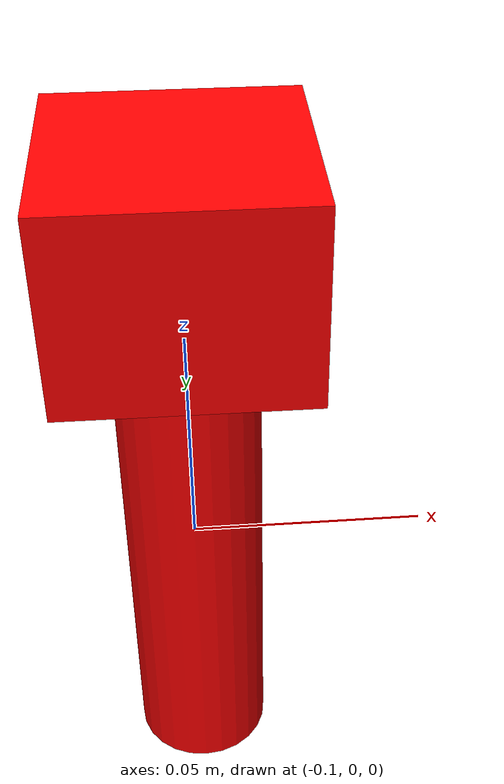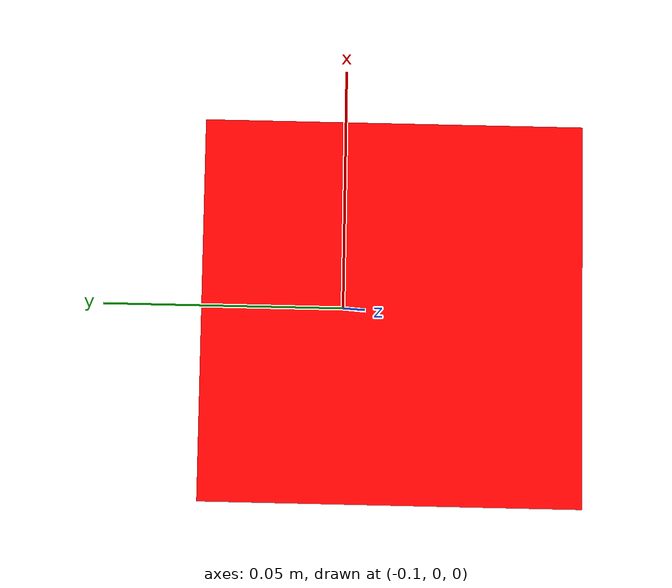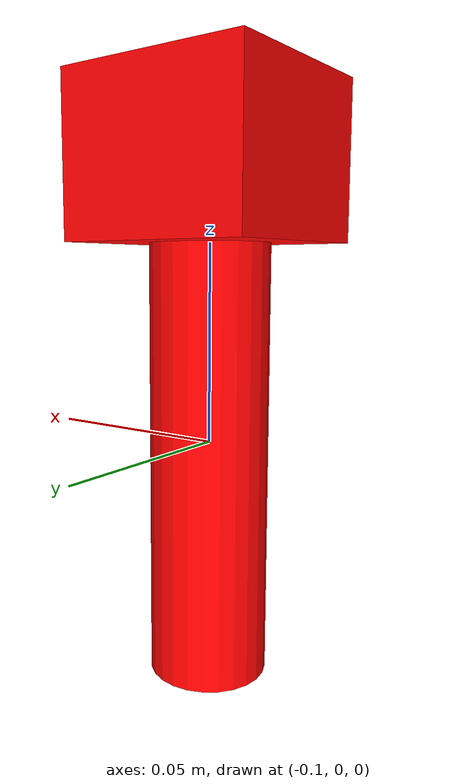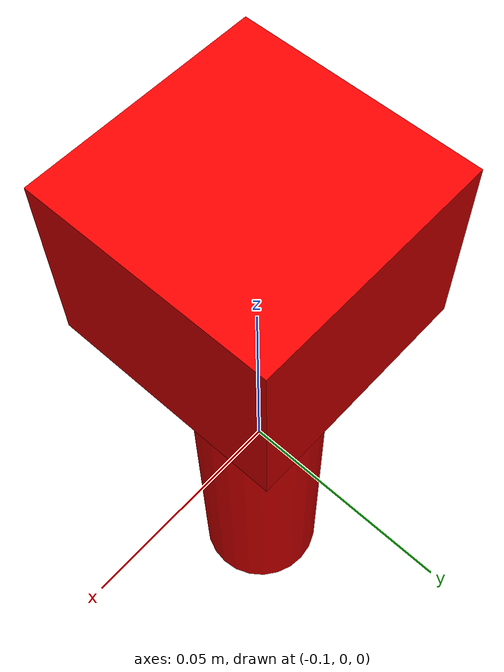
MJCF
<mujoco model="picked_box">
    <worldbody>
        <body name="picked_box" pos="0.0 0.0 0.0" quat="1 0 0 0">
            <geom name="picked_cylinder" pos="-0.1 0 0.0" size="0.015 0.06" rgba="1 0 0 1.0" type="cylinder" mass="0.02" friction="0.3 0.3 0.3" priority="1"/>
            <geom name="picked_box" pos="-0.1 0 0.07" size="0.025 0.025 0.02" rgba="1 0 0 1.0" type="box" mass="0.02" friction="0.3 0.001 0.0001"/>
            <joint name="picked_box_joint" type="free"/>
        </body>
    </worldbody>
</mujoco>
